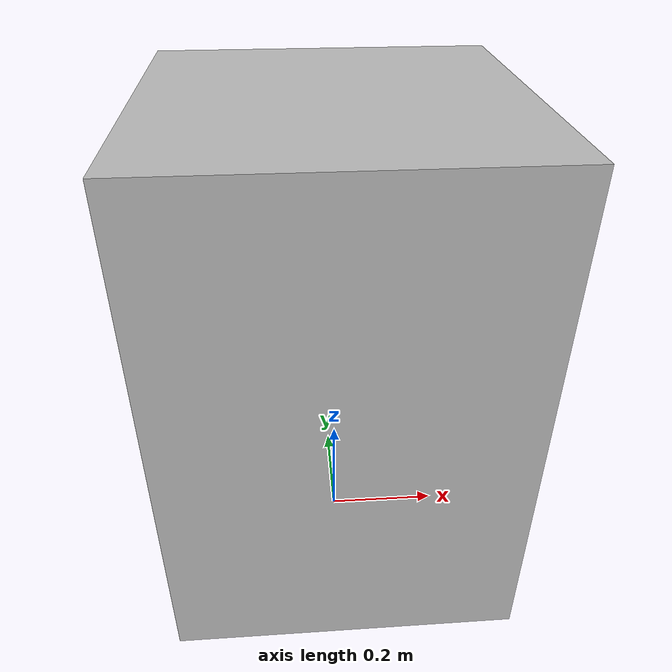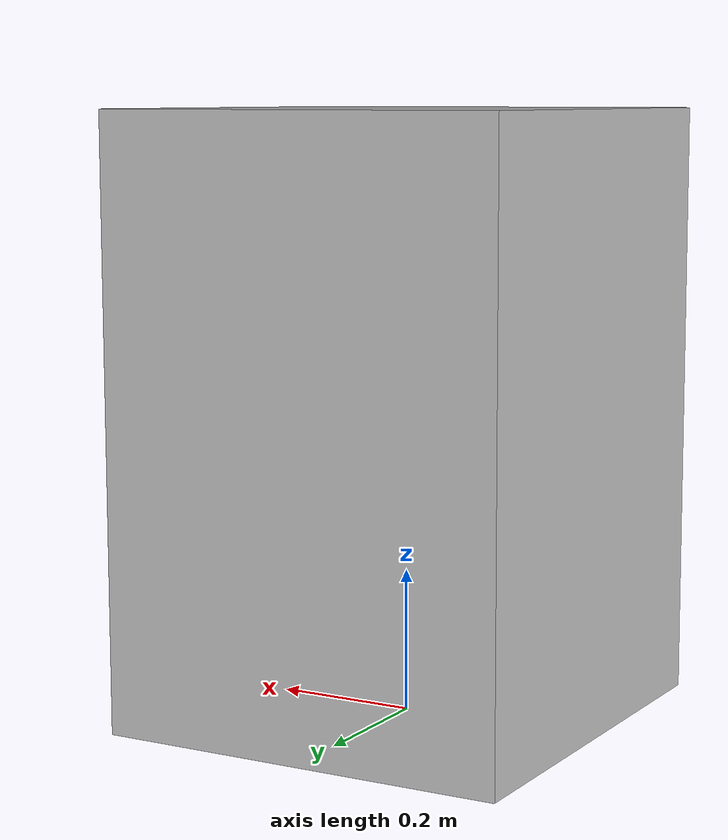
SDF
<?xml version="1.0" ?>
<sdf version="1.6">
  <model name="rwc2023/dishwasher">
    <static>true</static>
    <link name="1_link">
      <collision name="1_col">
        <geometry>
          <box>
            <size>0.58 0.6 0.84</size>
          </box>
        </geometry>
      </collision>
      <visual name="1_vis">
        <geometry>
          <box>
            <size>0.58 0.6 0.84</size>
          </box>
        </geometry>
      </visual>
      <pose>0.0 0.0 0.42 0 0 0</pose>
    </link>
    <link name="in_front_of">
      <virtual_volume name="in_front_of_vv">
        <geometry>
          <box>
            <size>0.2 0.4 0.01</size>
          </box>
        </geometry>
        <pose>0.79 0.0 0.005 0 0 0</pose>
      </virtual_volume>
    </link>
    <link name="in_front_of_ctt">
      <virtual_volume name="in_front_of_vv">
        <geometry>
          <box>
            <size>0.2 0.4 0.01</size>
          </box>
        </geometry>
        <pose>1.69 0.0 0.005 0 0 0</pose>
      </virtual_volume>
    </link>
  </model>
</sdf>
